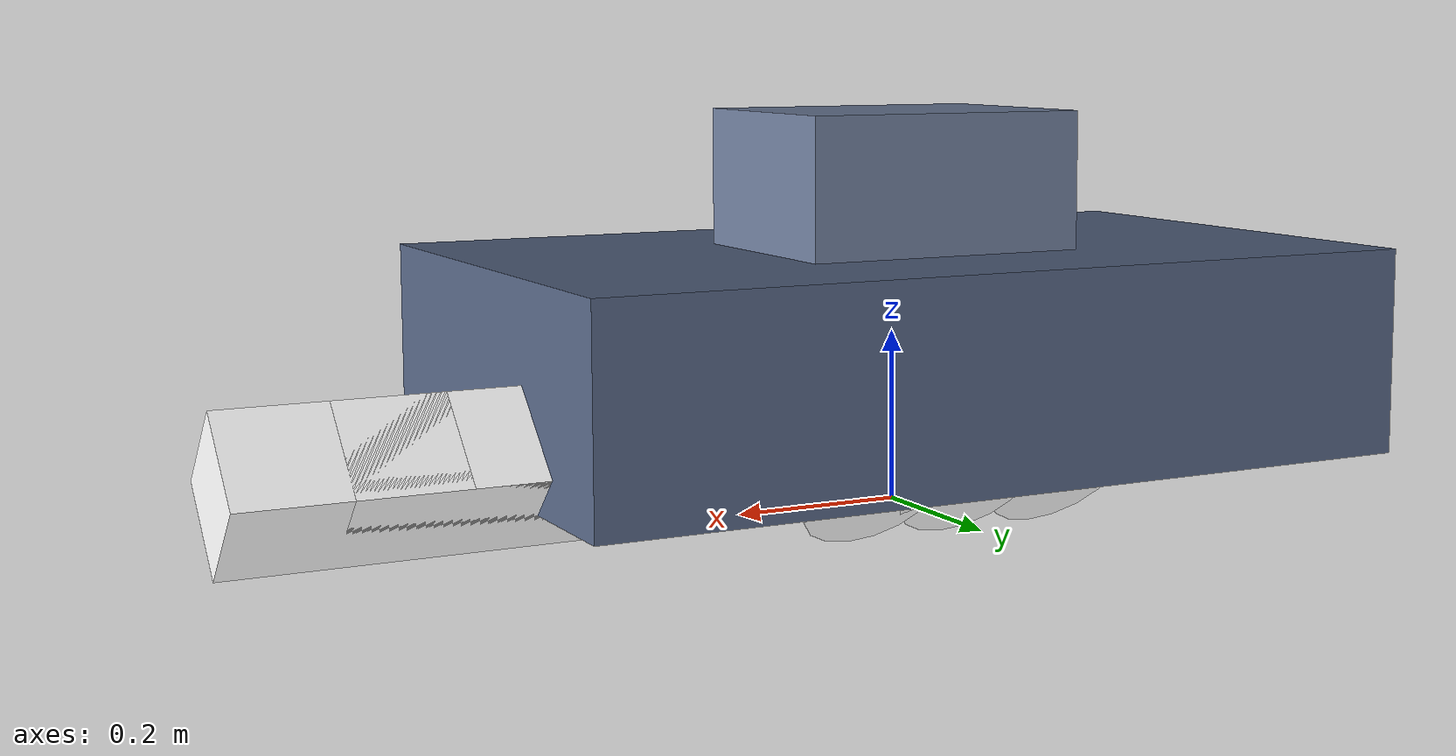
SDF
<?xml version='1.0'?>
<sdf version='1.6'>
  <model name='demo_joint_damping'>
    <pose>0 0 0.06 0 0 0</pose>
    <link name='link_base'>
      <inertial>
        <mass>100</mass>
        <inertia>
          <ixx>1.2</ixx>
          <ixy>0</ixy>
          <ixz>0</ixz>
          <iyy>3.64</iyy>
          <iyz>0</iyz>
          <izz>4.6</izz>
        </inertia>
      </inertial>
      <gravity>1</gravity>
      <self_collide>0</self_collide>
      <kinematic>0</kinematic>
      <enable_wind>0</enable_wind>
      <visual name='visual_base'>
        <geometry>
          <mesh>
            <uri>model://demo_joint_damping/meshes/base_model.dae</uri>
            <scale>0.001 0.001 0.001</scale>
          </mesh>
        </geometry>
        <cast_shadows>1</cast_shadows>
      </visual>
      <collision name='collision_base'>
        <geometry>
          <box>
            <size>0.65 0.36 0.12</size>
          </box>
        </geometry>
      </collision>
    </link>
    <link name='link_over_damping'>
      <gravity>0</gravity>
      <pose>0.12 0 0.15 0.7853981633974483 0 0</pose>
      <inertial>
        <pose>0 0 0.12 0 0 0</pose>
        <mass>1</mass>
        <inertia>
          <ixx>0.0051</ixx>
          <ixy>0</ixy>
          <ixz>0</ixz>
          <iyy>0.0051</iyy>
          <iyz>0</iyz>
          <izz>0.0006</izz>
        </inertia>
      </inertial>
      <visual name='visual_over_damping'>
        <pose>0 0 -0.15 0 0 0</pose>
        <geometry>
          <mesh>
            <uri>model://demo_joint_damping/meshes/arm.stl</uri>
            <scale>0.001 0.001 0.001</scale>
          </mesh>
        </geometry>
        <material><diffuse>1 1 1 1</diffuse><specular>0.1 0.1 0.1 1</specular></material>
        <cast_shadows>1</cast_shadows>
      </visual>
    </link>
    <joint name='joint_over_damping' type='revolute'>
      <parent>link_base</parent>
      <child>link_over_damping</child>
      <pose>0 0 0 -0.15 0 0</pose>
      <axis>
        <xyz>1 0 0</xyz>
        <dynamics>
          <damping>5</damping>
          <friction>0</friction>
          <!-- Spring stiffess and reference set to add movement to demonstration -->
          <spring_reference>-0.7853981633974483</spring_reference>
          <spring_stiffness>7</spring_stiffness>
        </dynamics>
      </axis>
    </joint>
    <link name='link_critical_damping'>
      <gravity>0</gravity>
      <pose>0 0 0.15 0.7853981633974483 0 0</pose>
      <inertial>
        <pose>0 0 0.12 0 0 0</pose>
        <mass>1</mass>
        <inertia>
          <ixx>0.0051</ixx>
          <ixy>0</ixy>
          <ixz>0</ixz>
          <iyy>0.0051</iyy>
          <iyz>0</iyz>
          <izz>0.0006</izz>
        </inertia>
      </inertial>
      <visual name='visual_critical_damping'>
        <pose>0 0 -0.15 0 0 0</pose>
        <geometry>
          <mesh>
            <uri>model://demo_joint_damping/meshes/arm.stl</uri>
            <scale>0.001 0.001 0.001</scale>
          </mesh>
        </geometry>
        <material><diffuse>1 1 1 1</diffuse><specular>0.1 0.1 0.1 1</specular></material>
        <cast_shadows>1</cast_shadows>
      </visual>
    </link>
    <joint name='joint_critical_damping' type='revolute'>
      <parent>link_base</parent>
      <child>link_critical_damping</child>
      <pose>0 0 0 -0.15 0 0</pose>
      <axis>
        <xyz>1 0 0</xyz>
        <dynamics>
          <damping>0.7</damping>
          <friction>0</friction>
          <spring_reference>-0.7853981633974483</spring_reference>
          <spring_stiffness>7</spring_stiffness>
        </dynamics>
      </axis>
    </joint>
    <link name='link_under_damping'>
      <gravity>0</gravity>
      <pose>-0.12 0 0.15 0.7853981633974483 0 0</pose>
      <inertial>
        <pose>0 0 0.12 0 0 0</pose>
        <mass>1</mass>
        <inertia>
          <ixx>0.0051</ixx>
          <ixy>0</ixy>
          <ixz>0</ixz>
          <iyy>0.0051</iyy>
          <iyz>0</iyz>
          <izz>0.0006</izz>
        </inertia>
      </inertial>
      <visual name='visual_under_damping'>
        <pose>0 0 -0.15 0 0 0</pose>
        <geometry>
          <mesh>
            <uri>model://demo_joint_damping/meshes/arm.stl</uri>
            <scale>0.001 0.001 0.001</scale>
          </mesh>
        </geometry>
        <material><diffuse>1 1 1 1</diffuse><specular>0.1 0.1 0.1 1</specular></material>
        <cast_shadows>1</cast_shadows>
      </visual>
    </link>
    <joint name='joint_under_damping' type='revolute'>
      <parent>link_base</parent>
      <child>link_under_damping</child>
      <pose>0 0 0 -0.15 0 0</pose>
      <axis>
        <xyz>1 0 0</xyz>
        <dynamics>
          <damping>0.05</damping>
          <friction>0</friction>
          <spring_reference>-0.7853981633974483</spring_reference>
          <spring_stiffness>7</spring_stiffness>
        </dynamics>
      </axis>
    </joint>
    <allow_auto_disable>1</allow_auto_disable>
  </model>
</sdf>
